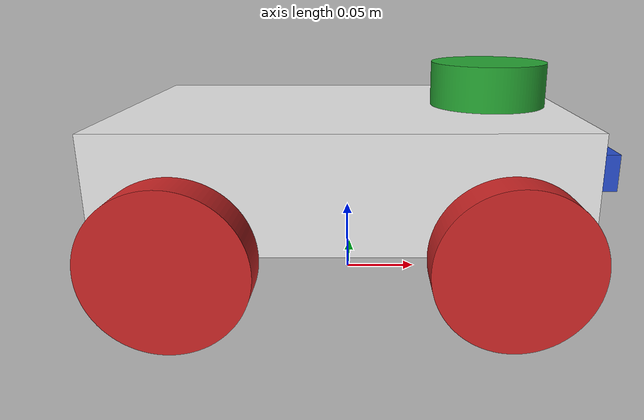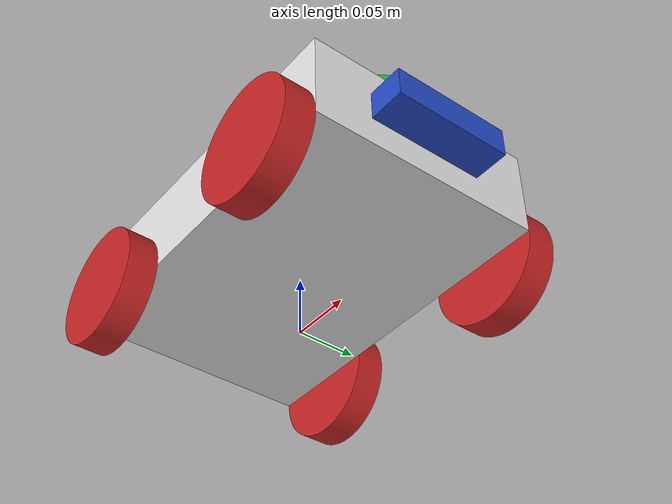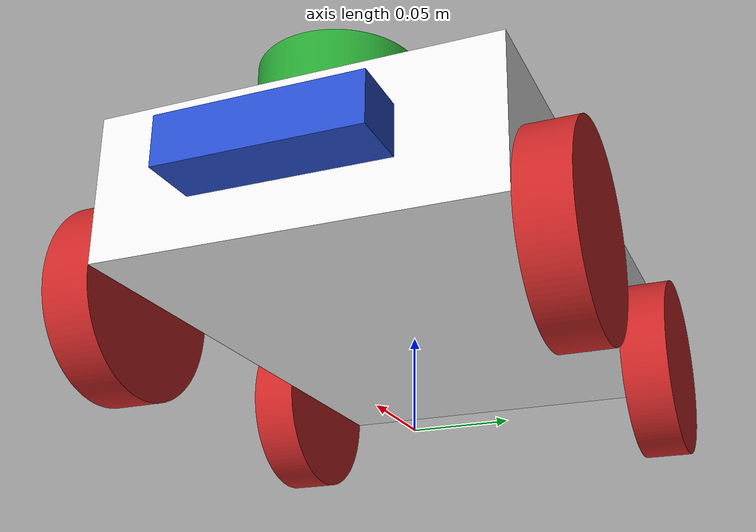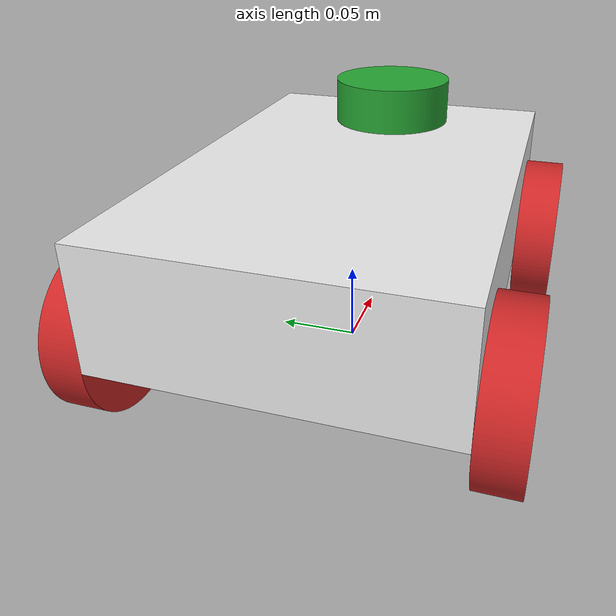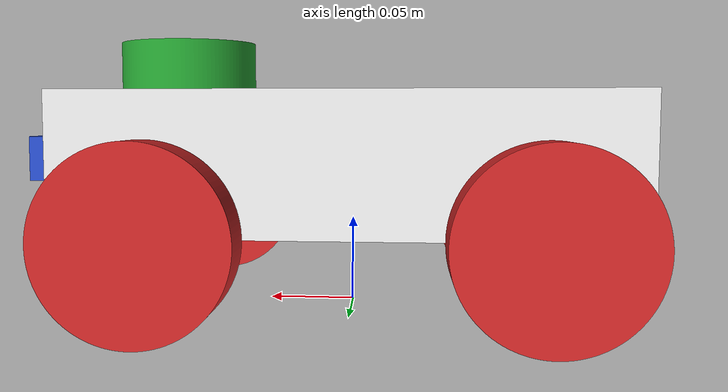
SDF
<sdf version='1.7'>
  <model name='wrv3'>
    <joint name='base_joint' type='fixed'>
      <pose relative_to='__model__'>0 0 0 0 -0 0</pose>
      <parent>world</parent>
      <child>base_link</child>
    </joint>
    <link name='base_link'>
      <pose relative_to='base_joint'>0 0 0 0 -0 0</pose>
      <inertial>
        <pose>0.005814 0 0.089172 0 -0 0</pose>
        <mass>7.283</mass>
        <inertia>
          <ixx>0.0267438</ixx>
          <ixy>0</ixy>
          <ixz>-0.00114719</ixz>
          <iyy>0.061064</iyy>
          <iyz>0</iyz>
          <izz>0.0803679</izz>
        </inertia>
      </inertial>
      <collision name='base_link_collision'>
        <pose>0 0 0.0875 0 -0 0</pose>
        <geometry>
          <mesh>
            <scale>0.01 0.01 0.01</scale>
            <uri>model://robot_launcher_cpp/meshes/base_link.stl</uri>
          </mesh>
        </geometry>
        <surface>
          <contact>
            <ode/>
          </contact>
          <friction>
            <ode/>
          </friction>
        </surface>
      </collision>
      <collision name='base_link_fixed_joint_lump__camera_link_collision_1'>
        <pose>0.165 0 0.0875 0 -0 0</pose>
        <geometry>
          <mesh>
            <scale>0.01 0.01 0.01</scale>
            <uri>model://robot_launcher_cpp/meshes/camera.stl</uri>
          </mesh>
        </geometry>
        <surface>
          <contact>
            <ode/>
          </contact>
          <friction>
            <ode/>
          </friction>
        </surface>
      </collision>
      <collision name='base_link_fixed_joint_lump__base_scan_collision_2'>
        <pose>0.1 0 0.14 0 -0 0</pose>
        <geometry>
          <mesh>
            <scale>0.01 0.01 0.01</scale>
            <uri>model://robot_launcher_cpp/meshes/lidar.stl</uri>
          </mesh>
        </geometry>
        <surface>
          <contact>
            <ode/>
          </contact>
          <friction>
            <ode/>
          </friction>
        </surface>
      </collision>
      <visual name='base_link_visual'>
        <pose>0 0 0.0875 0 -0 0</pose>
        <geometry>
          <mesh>
            <scale>0.01 0.01 0.01</scale>
            <uri>model://robot_launcher_cpp/meshes/base_link.stl</uri>
          </mesh>
        </geometry>
        <material>
          <script>
            <name>Gazebo/White</name>
            <uri>file://media/materials/scripts/gazebo.material</uri>
          </script>
        </material>
      </visual>
      <visual name='base_link_fixed_joint_lump__camera_link_visual_1'>
        <pose>0.165 0 0.0875 0 -0 0</pose>
        <geometry>
          <mesh>
            <scale>0.01 0.01 0.01</scale>
            <uri>model://robot_launcher_cpp/meshes/camera.stl</uri>
          </mesh>
        </geometry>
        <material>
          <script>
            <name>Gazebo/Blue</name>
            <uri>file://media/materials/scripts/gazebo.material</uri>
          </script>
        </material>
      </visual>
      <visual name='base_link_fixed_joint_lump__base_scan_visual_2'>
        <pose>0.1 0 0.14 0 -0 0</pose>
        <geometry>
          <mesh>
            <scale>0.01 0.01 0.01</scale>
            <uri>model://robot_launcher_cpp/meshes/lidar.stl</uri>
          </mesh>
        </geometry>
        <material>
          <script>
            <name>Gazebo/Green</name>
            <uri>file://media/materials/scripts/gazebo.material</uri>
          </script>
        </material>
      </visual>
      <sensor name='color_camera' type='camera'>
        <always_on>1</always_on>
        <visualize>1</visualize>
        <update_rate>30</update_rate>
        <camera name='camera'>
          <horizontal_fov>1.02974</horizontal_fov>
          <image>
            <width>640</width>
            <height>480</height>
            <format>R8G8B8</format>
          </image>
          <clip>
            <near>0.02</near>
            <far>300</far>
          </clip>
          <noise>
            <type>gaussian</type>
            <mean>0</mean>
            <stddev>0.007</stddev>
          </noise>
        </camera>
        <plugin name='camera_driver' filename='libgazebo_ros_camera.so'/>
        <pose>0.18 0 0.0875 3.14159 1.57079 3.14159</pose>
      </sensor>
      <sensor name='imu_sensor' type='imu'>
        <plugin name='wrv3_imu' filename='libgazebo_ros_imu_sensor.so'>
          <ros>
            <remapping>~/out:=imu</remapping>
          </ros>
        </plugin>
        <always_on>1</always_on>
        <update_rate>100</update_rate>
        <visualize>1</visualize>
        <imu>
          <angular_velocity>
            <x>
              <noise type='gaussian'>
                <mean>0</mean>
                <stddev>0.0002</stddev>
                <bias_mean>7.5e-06</bias_mean>
                <bias_stddev>8e-07</bias_stddev>
              </noise>
            </x>
            <y>
              <noise type='gaussian'>
                <mean>0</mean>
                <stddev>0.0002</stddev>
                <bias_mean>7.5e-06</bias_mean>
                <bias_stddev>8e-07</bias_stddev>
              </noise>
            </y>
            <z>
              <noise type='gaussian'>
                <mean>0</mean>
                <stddev>0.0002</stddev>
                <bias_mean>7.5e-06</bias_mean>
                <bias_stddev>8e-07</bias_stddev>
              </noise>
            </z>
          </angular_velocity>
          <linear_acceleration>
            <x>
              <noise type='gaussian'>
                <mean>0</mean>
                <stddev>0.017</stddev>
                <bias_mean>0.1</bias_mean>
                <bias_stddev>0.001</bias_stddev>
              </noise>
            </x>
            <y>
              <noise type='gaussian'>
                <mean>0</mean>
                <stddev>0.017</stddev>
                <bias_mean>0.1</bias_mean>
                <bias_stddev>0.001</bias_stddev>
              </noise>
            </y>
            <z>
              <noise type='gaussian'>
                <mean>0</mean>
                <stddev>0.017</stddev>
                <bias_mean>0.1</bias_mean>
                <bias_stddev>0.001</bias_stddev>
              </noise>
            </z>
          </linear_acceleration>
        </imu>
        <pose>0 0 0.0875 0 -0 0</pose>
      </sensor>
      <sensor name='lidar' type='ray'>
        <always_on>1</always_on>
        <visualize>1</visualize>
        <update_rate>30</update_rate>
        <ray>
          <scan>
            <horizontal>
              <samples>360</samples>
              <resolution>1</resolution>
              <min_angle>0</min_angle>
              <max_angle>6.28</max_angle>
            </horizontal>
          </scan>
          <range>
            <min>0.12</min>
            <max>3.5</max>
            <resolution>0.015</resolution>
          </range>
          <noise>
            <type>gaussian</type>
            <mean>0</mean>
            <stddev>0.01</stddev>
          </noise>
        </ray>
        <plugin name='scan' filename='libgazebo_ros_ray_sensor.so'>
          <ros>
            <remapping>~/out:=scan</remapping>
          </ros>
          <output_type>sensor_msgs/LaserScan</output_type>
          <frame_name>base_scan</frame_name>
        </plugin>
        <pose>0.1 0 0.14 0 -0 0</pose>
      </sensor>
    </link>
    <joint name='wheeldl_joint' type='revolute'>
      <pose relative_to='base_link'>0.1 0.1125 0.05 1.571 -0 0</pose>
      <parent>base_link</parent>
      <child>wheeldl_link</child>
      <axis>
        <xyz>0 0 1</xyz>
        <limit>
          <lower>-1e+16</lower>
          <upper>1e+16</upper>
        </limit>
        <dynamics>
          <spring_reference>0</spring_reference>
          <spring_stiffness>0</spring_stiffness>
        </dynamics>
      </axis>
    </joint>
    <link name='wheeldl_link'>
      <pose relative_to='wheeldl_joint'>0 0 0 0 -0 0</pose>
      <inertial>
        <pose>0 0 0 0 -0 0</pose>
        <mass>0.303</mass>
        <inertia>
          <ixx>0.000205</ixx>
          <ixy>0</ixy>
          <ixz>0</ixz>
          <iyy>0.000205</iyy>
          <iyz>0</iyz>
          <izz>0.000758</izz>
        </inertia>
      </inertial>
      <collision name='wheeldl_link_collision'>
        <pose>0 0 0 0 -0 0</pose>
        <geometry>
          <mesh>
            <scale>0.01 0.01 0.01</scale>
            <uri>model://robot_launcher_cpp/meshes/wheel.stl</uri>
          </mesh>
        </geometry>
        <surface>
          <contact>
            <ode/>
          </contact>
          <friction>
            <ode/>
          </friction>
        </surface>
      </collision>
      <visual name='wheeldl_link_visual'>
        <pose>0 0 0 0 -0 0</pose>
        <geometry>
          <mesh>
            <scale>0.01 0.01 0.01</scale>
            <uri>model://robot_launcher_cpp/meshes/wheel.stl</uri>
          </mesh>
        </geometry>
        <material>
          <script>
            <name>Gazebo/Red</name>
            <uri>file://media/materials/scripts/gazebo.material</uri>
          </script>
        </material>
      </visual>
    </link>
    <joint name='wheeldr_joint' type='revolute'>
      <pose relative_to='base_link'>0.1 -0.1125 0.05 -1.571 0 0</pose>
      <parent>base_link</parent>
      <child>wheeldr_link</child>
      <axis>
        <xyz>0 0 1</xyz>
        <limit>
          <lower>-1e+16</lower>
          <upper>1e+16</upper>
        </limit>
        <dynamics>
          <spring_reference>0</spring_reference>
          <spring_stiffness>0</spring_stiffness>
        </dynamics>
      </axis>
    </joint>
    <link name='wheeldr_link'>
      <pose relative_to='wheeldr_joint'>0 0 0 0 -0 0</pose>
      <inertial>
        <pose>0 0 0 0 -0 0</pose>
        <mass>0.303</mass>
        <inertia>
          <ixx>0.000205</ixx>
          <ixy>0</ixy>
          <ixz>0</ixz>
          <iyy>0.000205</iyy>
          <iyz>0</iyz>
          <izz>0.000758</izz>
        </inertia>
      </inertial>
      <collision name='wheeldr_link_collision'>
        <pose>0 0 0 0 -0 0</pose>
        <geometry>
          <mesh>
            <scale>0.01 0.01 0.01</scale>
            <uri>model://robot_launcher_cpp/meshes/wheel.stl</uri>
          </mesh>
        </geometry>
        <surface>
          <contact>
            <ode/>
          </contact>
          <friction>
            <ode/>
          </friction>
        </surface>
      </collision>
      <visual name='wheeldr_link_visual'>
        <pose>0 0 0 0 -0 0</pose>
        <geometry>
          <mesh>
            <scale>0.01 0.01 0.01</scale>
            <uri>model://robot_launcher_cpp/meshes/wheel.stl</uri>
          </mesh>
        </geometry>
        <material>
          <script>
            <name>Gazebo/Red</name>
            <uri>file://media/materials/scripts/gazebo.material</uri>
          </script>
        </material>
      </visual>
    </link>
    <joint name='wheell_joint' type='revolute'>
      <pose relative_to='base_link'>-0.1 0.1125 0.05 1.571 -0 0</pose>
      <parent>base_link</parent>
      <child>wheell_link</child>
      <axis>
        <xyz>0 0 1</xyz>
        <limit>
          <lower>-1e+16</lower>
          <upper>1e+16</upper>
        </limit>
        <dynamics>
          <spring_reference>0</spring_reference>
          <spring_stiffness>0</spring_stiffness>
        </dynamics>
      </axis>
    </joint>
    <link name='wheell_link'>
      <pose relative_to='wheell_joint'>0 0 0 0 -0 0</pose>
      <inertial>
        <pose>0 0 0 0 -0 0</pose>
        <mass>0.303</mass>
        <inertia>
          <ixx>0.000205</ixx>
          <ixy>0</ixy>
          <ixz>0</ixz>
          <iyy>0.000205</iyy>
          <iyz>0</iyz>
          <izz>0.000758</izz>
        </inertia>
      </inertial>
      <collision name='wheell_link_collision'>
        <pose>0 0 0 0 -0 0</pose>
        <geometry>
          <mesh>
            <scale>0.01 0.01 0.01</scale>
            <uri>model://robot_launcher_cpp/meshes/wheel.stl</uri>
          </mesh>
        </geometry>
        <surface>
          <contact>
            <ode/>
          </contact>
          <friction>
            <ode/>
          </friction>
        </surface>
      </collision>
      <visual name='wheell_link_visual'>
        <pose>0 0 0 0 -0 0</pose>
        <geometry>
          <mesh>
            <scale>0.01 0.01 0.01</scale>
            <uri>model://robot_launcher_cpp/meshes/wheel.stl</uri>
          </mesh>
        </geometry>
        <material>
          <script>
            <name>Gazebo/Red</name>
            <uri>file://media/materials/scripts/gazebo.material</uri>
          </script>
        </material>
      </visual>
    </link>
    <joint name='wheelr_joint' type='revolute'>
      <pose relative_to='base_link'>-0.1 -0.1125 0.05 -1.571 0 0</pose>
      <parent>base_link</parent>
      <child>wheelr_link</child>
      <axis>
        <xyz>0 0 1</xyz>
        <limit>
          <lower>-1e+16</lower>
          <upper>1e+16</upper>
        </limit>
        <dynamics>
          <spring_reference>0</spring_reference>
          <spring_stiffness>0</spring_stiffness>
        </dynamics>
      </axis>
    </joint>
    <link name='wheelr_link'>
      <pose relative_to='wheelr_joint'>0 0 0 0 -0 0</pose>
      <inertial>
        <pose>0 0 0 0 -0 0</pose>
        <mass>0.303</mass>
        <inertia>
          <ixx>0.000205</ixx>
          <ixy>0</ixy>
          <ixz>0</ixz>
          <iyy>0.000205</iyy>
          <iyz>0</iyz>
          <izz>0.000758</izz>
        </inertia>
      </inertial>
      <collision name='wheelr_link_collision'>
        <pose>0 0 0 0 -0 0</pose>
        <geometry>
          <mesh>
            <scale>0.01 0.01 0.01</scale>
            <uri>model://robot_launcher_cpp/meshes/wheel.stl</uri>
          </mesh>
        </geometry>
        <surface>
          <contact>
            <ode/>
          </contact>
          <friction>
            <ode/>
          </friction>
        </surface>
      </collision>
      <visual name='wheelr_link_visual'>
        <pose>0 0 0 0 -0 0</pose>
        <geometry>
          <mesh>
            <scale>0.01 0.01 0.01</scale>
            <uri>model://robot_launcher_cpp/meshes/wheel.stl</uri>
          </mesh>
        </geometry>
        <material>
          <script>
            <name>Gazebo/Red</name>
            <uri>file://media/materials/scripts/gazebo.material</uri>
          </script>
        </material>
      </visual>
    </link>
    <plugin name='wrv3_diff_drive' filename='libgazebo_ros_diff_drive.so'>
      <ros/>
      <update_rate>30</update_rate>
      <left_joint>wheell_joint</left_joint>
      <right_joint>wheelr_joint</right_joint>
      <wheel_separation>0.2</wheel_separation>
      <wheel_diameter>0.1</wheel_diameter>
      <max_wheel_torque>20</max_wheel_torque>
      <max_wheel_acceleration>1.0</max_wheel_acceleration>
      <command_topic>cmd_vel</command_topic>
      <publish_odom>1</publish_odom>
      <publish_odom_tf>1</publish_odom_tf>
      <publish_wheel_tf>0</publish_wheel_tf>
      <odometry_topic>odom</odometry_topic>
      <odometry_frame>odom</odometry_frame>
      <robot_base_frame>base_footprint</robot_base_frame>
    </plugin>
    <static>0</static>
    <plugin name='wrv3_joint_state' filename='libgazebo_ros_joint_state_publisher.so'>
      <ros>
        <remapping>~/out:=joint_states</remapping>
      </ros>
      <update_rate>30</update_rate>
      <joint_name>wheell_joint</joint_name>
      <joint_name>wheelr_joint</joint_name>
    </plugin>
  </model>
</sdf>
